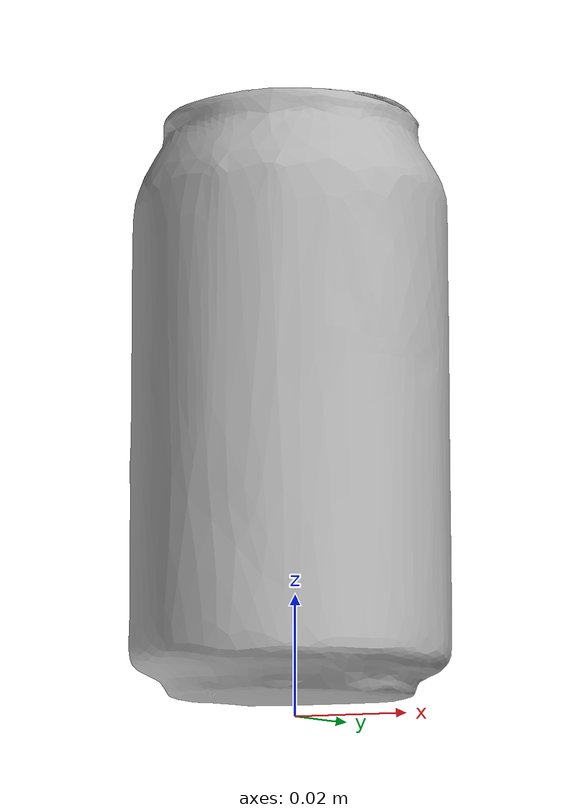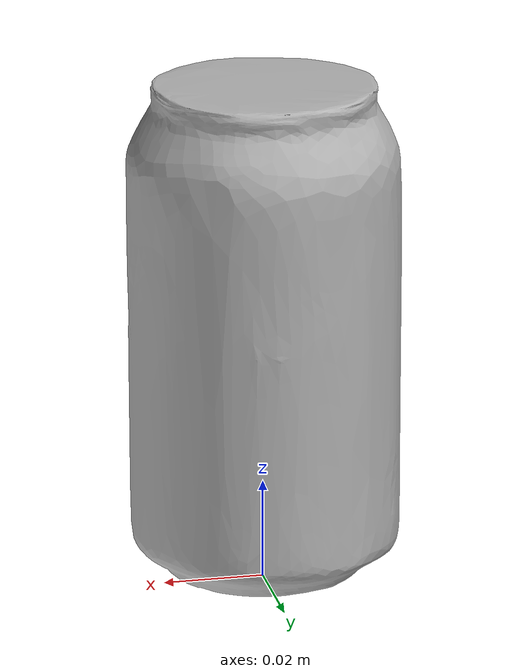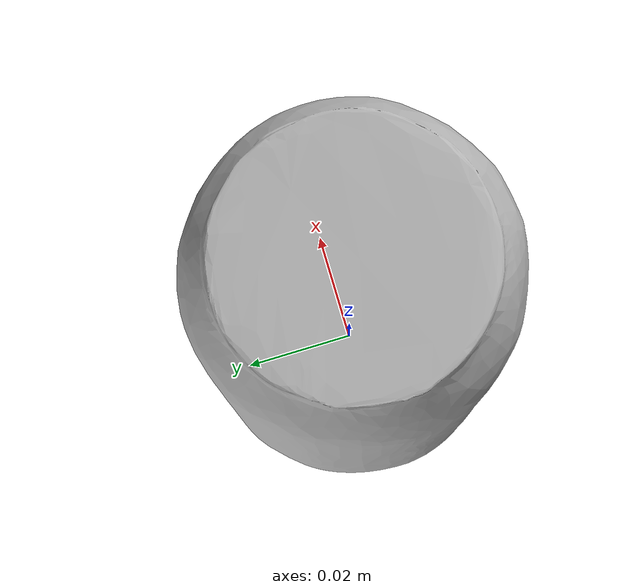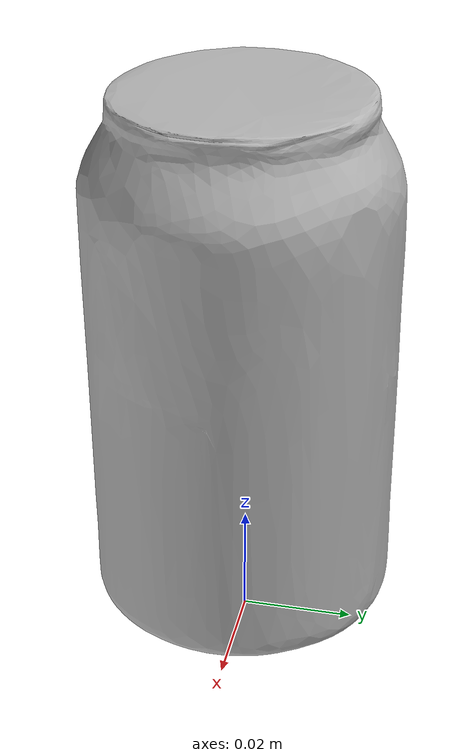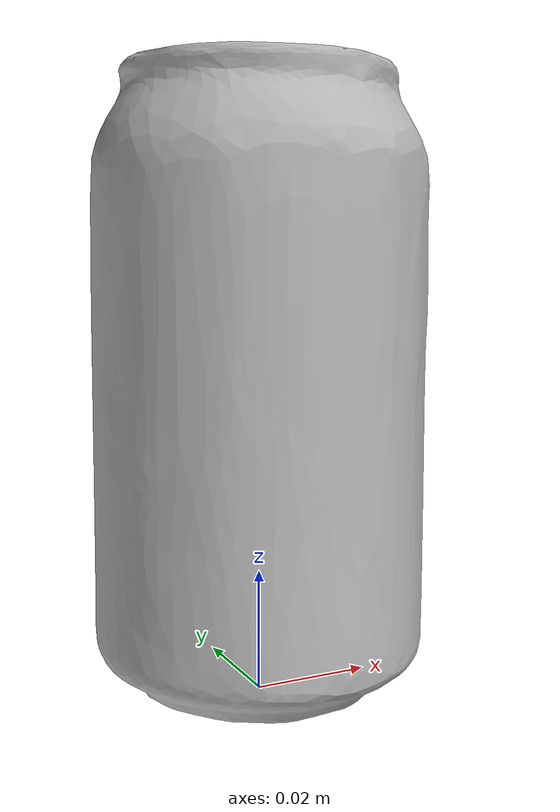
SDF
<?xml version="1.0" ?>
<sdf version="1.6">
  <model name="coke_can">
    <static>false</static>

    <link name="link">

      <gravity>true</gravity>
      <self_collide>false</self_collide>

      <inertial>
        <pose>0 0 0.0464 0 0 0</pose>
        <mass>0.25</mass>

        <inertia>
          <ixx>0.00021</ixx>
          <ixy>0.0</ixy>
          <ixz>0.0</ixz>
          <iyy>0.00021</iyy>
          <iyz>0.0</iyz>
          <izz>0.000063</izz>
        </inertia>
      </inertial>

      <velocity_decay>
        <linear>0.01</linear>
        <angular>0.01</angular>
      </velocity_decay>

      <collision name="collision_can">
        <pose>0 0 0.0464 0 0 0</pose>

        <geometry>
          <cylinder>
            <radius>0.0224</radius>
            <length>0.0928</length>
          </cylinder>
        </geometry>

        <surface>
          <friction>
            <ode>
              <mu>1000.0</mu>
              <mu2>1000.0</mu2>
              <slip1>0.0</slip1>
              <slip2>0.0</slip2>
            </ode>
          </friction>
          <bounce>
            <restitution_coefficient>0.0</restitution_coefficient>
            <threshold>100000.0</threshold>
          </bounce>
          <contact>
            <ode>
              <kp>80000.0</kp>
              <kd>25.0</kd>
              <min_depth>0.001</min_depth>
              <max_vel>0.05</max_vel>
            </ode>
          </contact>
        </surface>
      </collision>

      <visual name="visual">
        <pose>0.00315 0.00378 -0.144 0 0 0</pose>

        <geometry>
          <mesh>
            <uri>model://coke_can/meshes/coke_can.dae</uri>
            <scale>0.8 0.8 0.8</scale>
          </mesh>
        </geometry>
      </visual>

    </link>
  </model>
</sdf>
